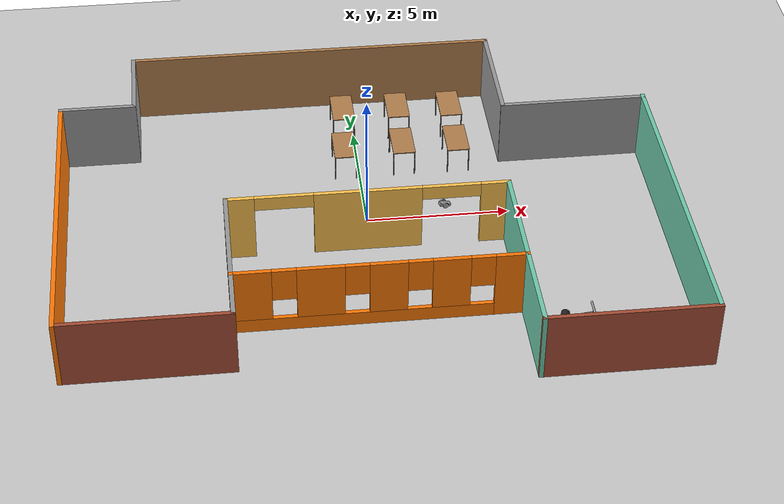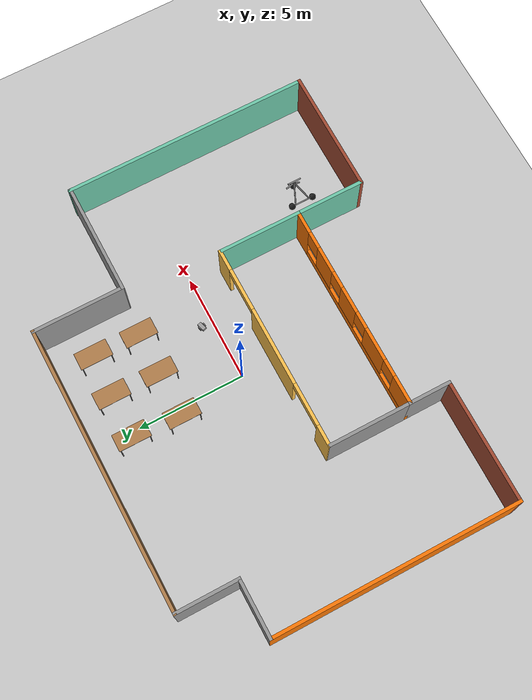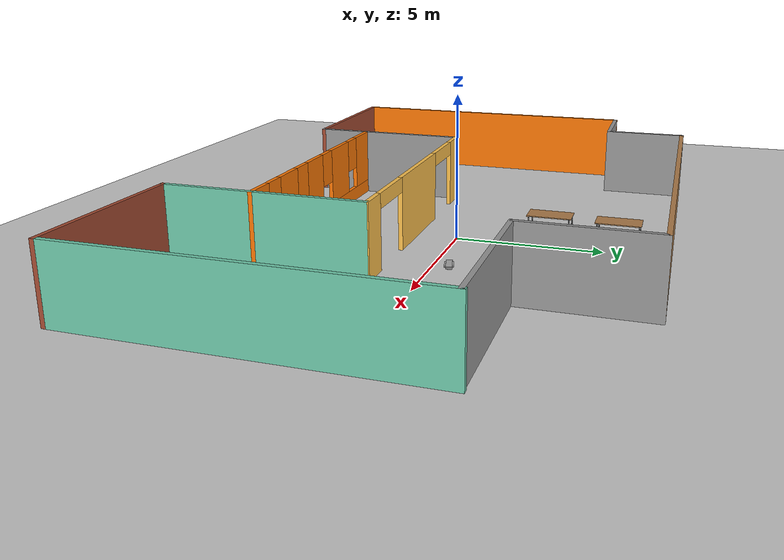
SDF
<sdf version="1.6">
 <world name="default">
  <model name="ground_plane">
   <static>1</static>
   <link name="link">
    <collision name="collision">
     <geometry><plane><normal>0 0 1</normal><size>100 100</size></plane></geometry>
     <surface>
      <contact><collide_bitmask>65535</collide_bitmask></contact>
      <friction><ode><mu>100</mu><mu2>50</mu2></ode></friction>
     </surface>
    </collision>
    <visual name="visual">
     <cast_shadows>0</cast_shadows>
     <geometry><plane><normal>0 0 1</normal><size>100 100</size></plane></geometry>
     <material>
      <script><uri>file://media/materials/scripts/gazebo.material</uri><name>Gazebo/Grey</name></script>
     </material>
    </visual>
   </link>
  </model>
  <model name="Building">
   <pose>-0.12037 -0.61393 0 0 -0 0</pose>
   <link name="Wall_0">
    <collision name="Wall_0_Collision">
     <geometry><box><size>13.25 0.15 2.5</size></box></geometry>
     <pose>0 0 1.25 0 -0 0</pose>
    </collision>
    <visual name="Wall_0_Visual">
     <pose>0 0 1.25 0 -0 0</pose>
     <geometry><box><size>13.25 0.15 2.5</size></box></geometry>
     <material>
      <script><uri>file://media/materials/scripts/gazebo.material</uri><name>Gazebo/Wood</name></script>
      <ambient>1 1 1 1</ambient>
     </material>
     <meta><layer>0</layer></meta>
    </visual>
    <pose>-1.25 7.725 0 0 -0 0</pose>
   </link>
   <link name="Wall_1">
    <collision name="Wall_1_Collision">
     <geometry><box><size>4.27249 0.15 2.5</size></box></geometry>
     <pose>0 0 1.25 0 -0 0</pose>
    </collision>
    <visual name="Wall_1_Visual">
     <pose>0 0 1.25 0 -0 0</pose>
     <geometry><box><size>4.27249 0.15 2.5</size></box></geometry>
     <material>
      <script><uri>file://media/materials/scripts/gazebo.material</uri><name>Gazebo/Grey</name></script>
      <ambient>1 1 1 1</ambient>
     </material>
     <meta><layer>0</layer></meta>
    </visual>
    <pose>5.3 5.66375 0 0 -0 -1.5708</pose>
   </link>
   <link name="Wall_10">
    <collision name="Wall_10_Collision">
     <geometry><box><size>2.75 0.15 2.5</size></box></geometry>
     <pose>0 0 1.25 0 -0 0</pose>
    </collision>
    <visual name="Wall_10_Visual">
     <pose>0 0 1.25 0 -0 0</pose>
     <geometry><box><size>2.75 0.15 2.5</size></box></geometry>
     <material>
      <script><uri>file://media/materials/scripts/gazebo.material</uri><name>Gazebo/Grey</name></script>
      <ambient>1 1 1 1</ambient>
     </material>
     <meta><layer>0</layer></meta>
    </visual>
    <pose>-9.1 4.875 0 0 -0 0</pose>
   </link>
   <link name="Wall_11">
    <collision name="Wall_11_Collision">
     <geometry><box><size>3 0.15 2.5</size></box></geometry>
     <pose>0 0 1.25 0 -0 0</pose>
    </collision>
    <visual name="Wall_11_Visual">
     <pose>0 0 1.25 0 -0 0</pose>
     <geometry><box><size>3 0.15 2.5</size></box></geometry>
     <material>
      <script><uri>file://media/materials/scripts/gazebo.material</uri><name>Gazebo/Grey</name></script>
      <ambient>1 1 1 1</ambient>
     </material>
     <meta><layer>0</layer></meta>
    </visual>
    <pose>-7.8 6.3 0 0 -0 1.5708</pose>
   </link>
   <link name="Wall_15">
    <collision name="Wall_15_Collision">
     <geometry><box><size>3.89729 0.15 2.5</size></box></geometry>
     <pose>0 0 1.25 0 -0 0</pose>
    </collision>
    <visual name="Wall_15_Visual">
     <pose>0 0 1.25 0 -0 0</pose>
     <geometry><box><size>3.89729 0.15 2.5</size></box></geometry>
     <material>
      <script><uri>file://media/materials/scripts/gazebo.material</uri><name>Gazebo/Grey</name></script>
      <ambient>1 1 1 1</ambient>
     </material>
     <meta><layer>0</layer></meta>
    </visual>
    <pose>-4.8 -2.75136 0 0 -0 1.5708</pose>
   </link>
   <link name="Wall_16">
    <pose>0 -0.837255 0 0 -0 0</pose>
    <visual name="Wall_16_Visual_0">
     <pose>-4.35572 0 1.25 0 -0 0</pose>
     <geometry><box><size>1.03855 0.15 2.5</size></box></geometry>
     <material>
      <script><uri>file://media/materials/scripts/gazebo.material</uri><name>Gazebo/Grey</name></script>
      <ambient>1 0.764706 0.305882 1</ambient>
     </material>
     <meta><layer>0</layer></meta>
    </visual>
    <collision name="Wall_16_Collision_0">
     <geometry><box><size>1.03855 0.15 2.5</size></box></geometry>
     <pose>-4.35572 0 1.25 0 -0 0</pose>
    </collision>
    <visual name="Wall_16_Visual_1">
     <pose>0.006927 0 1.25 0 -0 0</pose>
     <geometry><box><size>3.68675 0.15 2.5</size></box></geometry>
     <material>
      <script><uri>file://media/materials/scripts/gazebo.material</uri><name>Gazebo/Grey</name></script>
      <ambient>1 0.764706 0.305882 1</ambient>
     </material>
     <meta><layer>0</layer></meta>
    </visual>
    <collision name="Wall_16_Collision_1">
     <geometry><box><size>3.68675 0.15 2.5</size></box></geometry>
     <pose>0.006927 0 1.25 0 -0 0</pose>
    </collision>
    <visual name="Wall_16_Visual_2">
     <pose>4.36265 0 1.25 0 -0 0</pose>
     <geometry><box><size>1.0247 0.15 2.5</size></box></geometry>
     <material>
      <script><uri>file://media/materials/scripts/gazebo.material</uri><name>Gazebo/Grey</name></script>
      <ambient>1 0.764706 0.305882 1</ambient>
     </material>
     <meta><layer>0</layer></meta>
    </visual>
    <collision name="Wall_16_Collision_2">
     <geometry><box><size>1.0247 0.15 2.5</size></box></geometry>
     <pose>4.36265 0 1.25 0 -0 0</pose>
    </collision>
    <visual name="Wall_16_Visual_3">
     <pose>-2.83645 0 2.25 0 -0 0</pose>
     <geometry><box><size>2 0.15 0.5</size></box></geometry>
     <material>
      <script><uri>file://media/materials/scripts/gazebo.material</uri><name>Gazebo/Grey</name></script>
      <ambient>1 0.764706 0.305882 1</ambient>
     </material>
     <meta><layer>0</layer></meta>
    </visual>
    <collision name="Wall_16_Collision_3">
     <geometry><box><size>2 0.15 0.5</size></box></geometry>
     <pose>-2.83645 0 2.25 0 -0 0</pose>
    </collision>
    <visual name="Wall_16_Visual_4">
     <pose>2.8503 0 2.25 0 -0 0</pose>
     <geometry><box><size>2 0.15 0.5</size></box></geometry>
     <material>
      <script><uri>file://media/materials/scripts/gazebo.material</uri><name>Gazebo/Grey</name></script>
      <ambient>1 0.764706 0.305882 1</ambient>
     </material>
     <meta><layer>0</layer></meta>
    </visual>
    <collision name="Wall_16_Collision_4">
     <geometry><box><size>2 0.15 0.5</size></box></geometry>
     <pose>2.8503 0 2.25 0 -0 0</pose>
    </collision>
   </link>
   <link name="Wall_17">
    <collision name="Wall_17_Collision">
     <geometry><box><size>3.89729 0.15 2.5</size></box></geometry>
     <pose>0 0 1.25 0 -0 0</pose>
    </collision>
    <visual name="Wall_17_Visual">
     <pose>0 0 1.25 0 -0 0</pose>
     <geometry><box><size>3.89729 0.15 2.5</size></box></geometry>
     <material>
      <script><uri>file://media/materials/scripts/gazebo.material</uri><name>Gazebo/Grey</name></script>
      <ambient>0.435294 0.796078 0.67451 1</ambient>
     </material>
     <meta><layer>0</layer></meta>
    </visual>
    <pose>4.8 -2.75136 0 0 -0 -1.5708</pose>
   </link>
   <link name="Wall_2">
    <collision name="Wall_2_Collision">
     <geometry><box><size>5.25 0.15 2.5</size></box></geometry>
     <pose>0 0 1.25 0 -0 0</pose>
    </collision>
    <visual name="Wall_2_Visual">
     <pose>0 0 1.25 0 -0 0</pose>
     <geometry><box><size>5.25 0.15 2.5</size></box></geometry>
     <material>
      <script><uri>file://media/materials/scripts/gazebo.material</uri><name>Gazebo/Grey</name></script>
      <ambient>1 1 1 1</ambient>
     </material>
     <meta><layer>0</layer></meta>
    </visual>
    <pose>7.85 3.56733 0 0 -0 0</pose>
   </link>
   <link name="Wall_3">
    <collision name="Wall_3_Collision">
     <geometry><box><size>11.4775 0.15 2.5</size></box></geometry>
     <pose>0 0 1.25 0 -0 0</pose>
    </collision>
    <visual name="Wall_3_Visual">
     <pose>0 0 1.25 0 -0 0</pose>
     <geometry><box><size>11.4775 0.15 2.5</size></box></geometry>
     <material>
      <script><uri>file://media/materials/scripts/gazebo.material</uri><name>Gazebo/Grey</name></script>
      <ambient>0.435294 0.796078 0.67451 1</ambient>
     </material>
     <meta><layer>0</layer></meta>
    </visual>
    <pose>10.4 -2.06125 0 0 -0 -1.5708</pose>
   </link>
   <link name="Wall_4">
    <collision name="Wall_4_Collision">
     <geometry><box><size>5.75 0.15 2.5</size></box></geometry>
     <pose>0 0 1.25 0 -0 0</pose>
    </collision>
    <visual name="Wall_4_Visual">
     <pose>0 0 1.25 0 -0 0</pose>
     <geometry><box><size>5.75 0.15 2.5</size></box></geometry>
     <material>
      <script><uri>file://media/materials/scripts/gazebo.material</uri><name>Gazebo/Bricks</name></script>
      <ambient>1 1 1 1</ambient>
     </material>
     <meta><layer>0</layer></meta>
    </visual>
    <pose>7.6 -7.725 0 0 -0 3.14159</pose>
   </link>
   <link name="Wall_5">
    <collision name="Wall_5_Collision">
     <geometry><box><size>3.25 0.15 2.5</size></box></geometry>
     <pose>0 0 1.25 0 -0 0</pose>
    </collision>
    <visual name="Wall_5_Visual">
     <pose>0 0 1.25 0 -0 0</pose>
     <geometry><box><size>3.25 0.15 2.5</size></box></geometry>
     <material>
      <script><uri>file://media/materials/scripts/gazebo.material</uri><name>Gazebo/Grey</name></script>
      <ambient>0.435294 0.796078 0.67451 1</ambient>
     </material>
     <meta><layer>0</layer></meta>
    </visual>
    <pose>4.8 -6.175 0 0 -0 1.5708</pose>
   </link>
   <link name="Wall_6">
    <pose>0 -4.625 0 0 -0 3.14159</pose>
    <visual name="Wall_6_Visual_0">
     <pose>-4.31909 0 1.25 0 -0 0</pose>
     <geometry><box><size>1.11182 0.15 2.5</size></box></geometry>
     <material>
      <script><uri>file://media/materials/scripts/gazebo.material</uri><name>Gazebo/Grey</name></script>
      <ambient>0.996078 0.47451 0.0196078 1</ambient>
     </material>
     <meta><layer>0</layer></meta>
    </visual>
    <collision name="Wall_6_Collision_0">
     <geometry><box><size>1.11182 0.15 2.5</size></box></geometry>
     <pose>-4.31909 0 1.25 0 -0 0</pose>
    </collision>
    <visual name="Wall_6_Visual_1">
     <pose>0.555911 0 0.25 0 -0 0</pose>
     <geometry><box><size>8.63818 0.15 0.5</size></box></geometry>
     <material>
      <script><uri>file://media/materials/scripts/gazebo.material</uri><name>Gazebo/Grey</name></script>
      <ambient>0.996078 0.47451 0.0196078 1</ambient>
     </material>
     <meta><layer>0</layer></meta>
    </visual>
    <collision name="Wall_6_Collision_1">
     <geometry><box><size>8.63818 0.15 0.5</size></box></geometry>
     <pose>0.555911 0 0.25 0 -0 0</pose>
    </collision>
    <visual name="Wall_6_Visual_2">
     <pose>-2.33907 0 1.5 0 -0 0</pose>
     <geometry><box><size>1.24822 0.15 2</size></box></geometry>
     <material>
      <script><uri>file://media/materials/scripts/gazebo.material</uri><name>Gazebo/Grey</name></script>
      <ambient>0.996078 0.47451 0.0196078 1</ambient>
     </material>
     <meta><layer>0</layer></meta>
    </visual>
    <collision name="Wall_6_Collision_2">
     <geometry><box><size>1.24822 0.15 2</size></box></geometry>
     <pose>-2.33907 0 1.5 0 -0 0</pose>
    </collision>
    <visual name="Wall_6_Visual_3">
     <pose>-0.290856 0 1.5 0 -0 0</pose>
     <geometry><box><size>1.24822 0.15 2</size></box></geometry>
     <material>
      <script><uri>file://media/materials/scripts/gazebo.material</uri><name>Gazebo/Grey</name></script>
      <ambient>0.996078 0.47451 0.0196078 1</ambient>
     </material>
     <meta><layer>0</layer></meta>
    </visual>
    <collision name="Wall_6_Collision_3">
     <geometry><box><size>1.24822 0.15 2</size></box></geometry>
     <pose>-0.290856 0 1.5 0 -0 0</pose>
    </collision>
    <visual name="Wall_6_Visual_4">
     <pose>1.91696 0 1.5 0 -0 0</pose>
     <geometry><box><size>1.56742 0.15 2</size></box></geometry>
     <material>
      <script><uri>file://media/materials/scripts/gazebo.material</uri><name>Gazebo/Grey</name></script>
      <ambient>0.996078 0.47451 0.0196078 1</ambient>
     </material>
     <meta><layer>0</layer></meta>
    </visual>
    <collision name="Wall_6_Collision_4">
     <geometry><box><size>1.56742 0.15 2</size></box></geometry>
     <pose>1.91696 0 1.5 0 -0 0</pose>
    </collision>
    <visual name="Wall_6_Visual_5">
     <pose>4.18783 0 1.5 0 -0 0</pose>
     <geometry><box><size>1.37433 0.15 2</size></box></geometry>
     <material>
      <script><uri>file://media/materials/scripts/gazebo.material</uri><name>Gazebo/Grey</name></script>
      <ambient>0.996078 0.47451 0.0196078 1</ambient>
     </material>
     <meta><layer>0</layer></meta>
    </visual>
    <collision name="Wall_6_Collision_5">
     <geometry><box><size>1.37433 0.15 2</size></box></geometry>
     <pose>4.18783 0 1.5 0 -0 0</pose>
    </collision>
    <visual name="Wall_6_Visual_6">
     <pose>-3.36318 0 1.9 0 -0 0</pose>
     <geometry><box><size>0.8 0.15 1.2</size></box></geometry>
     <material>
      <script><uri>file://media/materials/scripts/gazebo.material</uri><name>Gazebo/Grey</name></script>
      <ambient>0.996078 0.47451 0.0196078 1</ambient>
     </material>
     <meta><layer>0</layer></meta>
    </visual>
    <collision name="Wall_6_Collision_6">
     <geometry><box><size>0.8 0.15 1.2</size></box></geometry>
     <pose>-3.36318 0 1.9 0 -0 0</pose>
    </collision>
    <visual name="Wall_6_Visual_7">
     <pose>-1.31496 0 1.9 0 -0 0</pose>
     <geometry><box><size>0.8 0.15 1.2</size></box></geometry>
     <material>
      <script><uri>file://media/materials/scripts/gazebo.material</uri><name>Gazebo/Grey</name></script>
      <ambient>0.996078 0.47451 0.0196078 1</ambient>
     </material>
     <meta><layer>0</layer></meta>
    </visual>
    <collision name="Wall_6_Collision_7">
     <geometry><box><size>0.8 0.15 1.2</size></box></geometry>
     <pose>-1.31496 0 1.9 0 -0 0</pose>
    </collision>
    <visual name="Wall_6_Visual_8">
     <pose>0.733252 0 1.9 0 -0 0</pose>
     <geometry><box><size>0.8 0.15 1.2</size></box></geometry>
     <material>
      <script><uri>file://media/materials/scripts/gazebo.material</uri><name>Gazebo/Grey</name></script>
      <ambient>0.996078 0.47451 0.0196078 1</ambient>
     </material>
     <meta><layer>0</layer></meta>
    </visual>
    <collision name="Wall_6_Collision_8">
     <geometry><box><size>0.8 0.15 1.2</size></box></geometry>
     <pose>0.733252 0 1.9 0 -0 0</pose>
    </collision>
    <visual name="Wall_6_Visual_9">
     <pose>3.10067 0 1.9 0 -0 0</pose>
     <geometry><box><size>0.8 0.15 1.2</size></box></geometry>
     <material>
      <script><uri>file://media/materials/scripts/gazebo.material</uri><name>Gazebo/Grey</name></script>
      <ambient>0.996078 0.47451 0.0196078 1</ambient>
     </material>
     <meta><layer>0</layer></meta>
    </visual>
    <collision name="Wall_6_Collision_9">
     <geometry><box><size>0.8 0.15 1.2</size></box></geometry>
     <pose>3.10067 0 1.9 0 -0 0</pose>
    </collision>
   </link>
   <link name="Wall_7">
    <collision name="Wall_7_Collision">
     <geometry><box><size>2 0.15 2.5</size></box></geometry>
     <pose>0 0 1.25 0 -0 0</pose>
    </collision>
    <visual name="Wall_7_Visual">
     <pose>0 0 1.25 0 -0 0</pose>
     <geometry><box><size>2 0.15 2.5</size></box></geometry>
     <material>
      <script><uri>file://media/materials/scripts/gazebo.material</uri><name>Gazebo/Grey</name></script>
      <ambient>1 1 1 1</ambient>
     </material>
     <meta><layer>0</layer></meta>
    </visual>
    <pose>-4.8 -5.55 0 0 -0 -1.5708</pose>
   </link>
   <link name="Wall_8">
    <collision name="Wall_8_Collision">
     <geometry><box><size>5.75 0.15 2.5</size></box></geometry>
     <pose>0 0 1.25 0 -0 0</pose>
    </collision>
    <visual name="Wall_8_Visual">
     <pose>0 0 1.25 0 -0 0</pose>
     <geometry><box><size>5.75 0.15 2.5</size></box></geometry>
     <material>
      <script><uri>file://media/materials/scripts/gazebo.material</uri><name>Gazebo/Bricks</name></script>
      <ambient>1 1 1 1</ambient>
     </material>
     <meta><layer>0</layer></meta>
    </visual>
    <pose>-7.6 -6.475 0 0 -0 3.14159</pose>
   </link>
   <link name="Wall_9">
    <collision name="Wall_9_Collision">
     <geometry><box><size>11.5 0.15 2.5</size></box></geometry>
     <pose>0 0 1.25 0 -0 0</pose>
    </collision>
    <visual name="Wall_9_Visual">
     <pose>0 0 1.25 0 -0 0</pose>
     <geometry><box><size>11.5 0.15 2.5</size></box></geometry>
     <material>
      <script><uri>file://media/materials/scripts/gazebo.material</uri><name>Gazebo/Grey</name></script>
      <ambient>0.996078 0.47451 0.0196078 1</ambient>
     </material>
     <meta><layer>0</layer></meta>
    </visual>
    <pose>-10.4 -0.8 0 0 -0 1.5708</pose>
   </link>
   <static>1</static>
  </model>
  <model name="trisphere_cycle">
   <link name="frame">
    <pose>-0.408559 0 0.385023 0 -0.522021 0</pose>
    <inertial>
     <mass>10</mass>
     <inertia><ixx>0.228</ixx><iyy>0.743521</iyy><izz>0.965521</izz><ixy>0</ixy><ixz>0</ixz><iyz>0</iyz></inertia>
    </inertial>
    <collision name="axle_collision">
     <pose>-0.471335 0 0 1.5708 -0 0</pose>
     <geometry><cylinder><length>1.03923</length><radius>0.03</radius></cylinder></geometry>
    </collision>
    <visual name="axle_visual">
     <pose>-0.471335 0 0 1.5708 -0 0</pose>
     <geometry><cylinder><length>1.03923</length><radius>0.03</radius></cylinder></geometry>
     <material>
      <script><uri>file://media/materials/scripts/gazebo.material</uri><name>Gazebo/Grey</name></script>
     </material>
    </visual>
    <collision name="frame_left_collision">
     <pose>0 0.171552 0 -2.79253 1.57079 3.14159</pose>
     <geometry><cylinder><length>1.00317</length><radius>0.03</radius></cylinder></geometry>
    </collision>
    <visual name="frame_left_visual">
     <pose>0 0.171552 0 -2.79253 1.57079 3.14159</pose>
     <geometry><cylinder><length>1.00317</length><radius>0.03</radius></cylinder></geometry>
     <material>
      <script><uri>file://media/materials/scripts/gazebo.material</uri><name>Gazebo/Grey</name></script>
     </material>
    </visual>
    <collision name="frame_right_collision">
     <pose>0 -0.171552 0 2.79253 1.57079 -3.14159</pose>
     <geometry><cylinder><length>1.00317</length><radius>0.03</radius></cylinder></geometry>
    </collision>
    <visual name="frame_right_visual">
     <pose>0 -0.171552 0 2.79253 1.57079 -3.14159</pose>
     <geometry><cylinder><length>1.00317</length><radius>0.03</radius></cylinder></geometry>
     <material>
      <script><uri>file://media/materials/scripts/gazebo.material</uri><name>Gazebo/Grey</name></script>
     </material>
    </visual>
   </link>
   <link name="fork">
    <pose>0.041441 0 0.385023 0 -0.174533 0</pose>
    <inertial>
     <mass>3</mass>
     <inertia>
      <ixx>0.158203</ixx>
      <iyy>0.0583594</iyy>
      <izz>0.102656</izz>
      <ixy>0</ixy>
      <ixz>0</ixz>
      <iyz>0</iyz>
     </inertia>
    </inertial>
    <collision name="handlebars_collision">
     <pose>0 0 0.397748 1.5708 -0 0</pose>
     <geometry><cylinder><length>0.636396</length><radius>0.0375</radius></cylinder></geometry>
    </collision>
    <visual name="handlebars_visual">
     <pose>0 0 0.397748 1.5708 -0 0</pose>
     <geometry><cylinder><length>0.636396</length><radius>0.0375</radius></cylinder></geometry>
     <material>
      <script><uri>file://media/materials/scripts/gazebo.material</uri><name>Gazebo/Grey</name></script>
     </material>
    </visual>
    <collision name="headtube_collision">
     <pose>0 0 0.238649 0 -0 0</pose>
     <geometry><cylinder><length>0.318198</length><radius>0.0375</radius></cylinder></geometry>
    </collision>
    <visual name="headtube_visual">
     <pose>0 0 0.238649 0 -0 0</pose>
     <geometry><cylinder><length>0.318198</length><radius>0.0375</radius></cylinder></geometry>
     <material>
      <script><uri>file://media/materials/scripts/gazebo.material</uri><name>Gazebo/Grey</name></script>
     </material>
    </visual>
    <collision name="spindle_collision">
     <pose>0 0 -0.238649 1.5708 -0 0</pose>
     <geometry><cylinder><length>0.636396</length><radius>0.015</radius></cylinder></geometry>
    </collision>
    <visual name="spindle_visual">
     <pose>0 0 -0.238649 1.5708 -0 0</pose>
     <geometry><cylinder><length>0.636396</length><radius>0.015</radius></cylinder></geometry>
     <material>
      <script><uri>file://media/materials/scripts/gazebo.material</uri><name>Gazebo/Grey</name></script>
     </material>
    </visual>
    <collision name="fork_left_collision">
     <pose>0 0.159099 -0.07955 0.785398 -0 0</pose>
     <geometry><cylinder><length>0.45</length><radius>0.0375</radius></cylinder></geometry>
    </collision>
    <visual name="fork_left_visual">
     <pose>0 0.159099 -0.07955 0.785398 -0 0</pose>
     <geometry><cylinder><length>0.45</length><radius>0.0375</radius></cylinder></geometry>
     <material>
      <script><uri>file://media/materials/scripts/gazebo.material</uri><name>Gazebo/Grey</name></script>
     </material>
    </visual>
    <collision name="fork_right_collision">
     <pose>0 -0.159099 -0.07955 -0.785398 0 0</pose>
     <geometry><cylinder><length>0.45</length><radius>0.0375</radius></cylinder></geometry>
    </collision>
    <visual name="fork_right_visual">
     <pose>0 -0.159099 -0.07955 -0.785398 0 0</pose>
     <geometry><cylinder><length>0.45</length><radius>0.0375</radius></cylinder></geometry>
     <material>
      <script><uri>file://media/materials/scripts/gazebo.material</uri><name>Gazebo/Grey</name></script>
     </material>
    </visual>
   </link>
   <link name="wheel_front">
    <pose>0.082882 0 0.15 0 -0 0</pose>
    <inertial>
     <mass>0.5</mass>
     <inertia><ixx>0.0045</ixx><iyy>0.0045</iyy><izz>0.0045</izz><ixy>0</ixy><ixz>0</ixz><iyz>0</iyz></inertia>
    </inertial>
    <collision name="collision">
     <geometry><sphere><radius>0.15</radius></sphere></geometry>
     <surface><contact><ode><kp>1e+08</kp><kd>1</kd><min_depth>0.0005</min_depth></ode></contact></surface>
    </collision>
    <visual name="visual">
     <geometry><sphere><radius>0.15</radius></sphere></geometry>
     <material>
      <script><uri>file://media/materials/scripts/gazebo.material</uri><name>Gazebo/Black</name></script>
     </material>
    </visual>
   </link>
   <joint name="wheel_front_steer" type="revolute">
    <parent>frame</parent>
    <child>fork</child>
    <axis>
     <xyz>0 0 1</xyz>
     <limit><lower>-0.959931</lower><upper>0.959931</upper></limit>
     <use_parent_model_frame>0</use_parent_model_frame>
     <dynamics><spring_reference>0</spring_reference><spring_stiffness>0</spring_stiffness></dynamics>
    </axis>
   </joint>
   <joint name="wheel_front_spin" type="revolute">
    <parent>fork</parent>
    <child>wheel_front</child>
    <axis>
     <xyz>0 1 0</xyz>
     <use_parent_model_frame>0</use_parent_model_frame>
     <limit><lower>-1e+16</lower><upper>1e+16</upper></limit>
     <dynamics><spring_reference>0</spring_reference><spring_stiffness>0</spring_stiffness></dynamics>
    </axis>
   </joint>
   <link name="wheel_rear_left">
    <pose>-0.817118 0.519615 0.15 0 -0 0</pose>
    <inertial>
     <mass>0.5</mass>
     <inertia><ixx>0.0045</ixx><iyy>0.0045</iyy><izz>0.0045</izz><ixy>0</ixy><ixz>0</ixz><iyz>0</iyz></inertia>
    </inertial>
    <collision name="collision">
     <geometry><sphere><radius>0.15</radius></sphere></geometry>
     <surface><contact><ode><kp>1e+08</kp><kd>1</kd><min_depth>0.0005</min_depth></ode></contact></surface>
    </collision>
    <visual name="visual">
     <geometry><sphere><radius>0.15</radius></sphere></geometry>
     <material>
      <script><uri>file://media/materials/scripts/gazebo.material</uri><name>Gazebo/Black</name></script>
     </material>
    </visual>
   </link>
   <joint name="wheel_rear_left_spin" type="revolute">
    <parent>frame</parent>
    <child>wheel_rear_left</child>
    <axis>
     <xyz>0 1 0</xyz>
     <use_parent_model_frame>0</use_parent_model_frame>
     <limit><lower>-1e+16</lower><upper>1e+16</upper></limit>
     <dynamics><spring_reference>0</spring_reference><spring_stiffness>0</spring_stiffness></dynamics>
    </axis>
   </joint>
   <link name="wheel_rear_right">
    <pose>-0.817118 -0.519615 0.15 0 -0 0</pose>
    <inertial>
     <mass>0.5</mass>
     <inertia><ixx>0.0045</ixx><iyy>0.0045</iyy><izz>0.0045</izz><ixy>0</ixy><ixz>0</ixz><iyz>0</iyz></inertia>
    </inertial>
    <collision name="collision">
     <geometry><sphere><radius>0.15</radius></sphere></geometry>
     <surface><contact><ode><kp>1e+08</kp><kd>1</kd><min_depth>0.0005</min_depth></ode></contact></surface>
    </collision>
    <visual name="visual">
     <geometry><sphere><radius>0.15</radius></sphere></geometry>
     <material>
      <script><uri>file://media/materials/scripts/gazebo.material</uri><name>Gazebo/Black</name></script>
     </material>
    </visual>
   </link>
   <joint name="wheel_rear_right_spin" type="revolute">
    <parent>frame</parent>
    <child>wheel_rear_right</child>
    <axis>
     <xyz>0 1 0</xyz>
     <use_parent_model_frame>0</use_parent_model_frame>
     <limit><lower>-1e+16</lower><upper>1e+16</upper></limit>
     <dynamics><spring_reference>0</spring_reference><spring_stiffness>0</spring_stiffness></dynamics>
    </axis>
   </joint>
   <pose>6.79048 -6.20647 -0.000501 -0 1e-06 -0.000787</pose>
  </model>
  <model name="table_clone_1">
   <static>1</static>
   <link name="link">
    <collision name="surface">
     <pose>0 0 1 0 -0 0</pose>
     <geometry><box><size>1.5 0.8 0.03</size></box></geometry>
     <surface><friction><ode><mu>0.6</mu><mu2>0.6</mu2></ode></friction></surface>
    </collision>
    <visual name="visual1">
     <pose>0 0 1 0 -0 0</pose>
     <geometry><box><size>1.5 0.8 0.03</size></box></geometry>
     <material>
      <script><uri>file://media/materials/scripts/gazebo.material</uri><name>Gazebo/Wood</name></script>
     </material>
    </visual>
    <collision name="front_left_leg">
     <pose>0.68 0.38 0.5 0 -0 0</pose>
     <geometry><cylinder><radius>0.02</radius><length>1</length></cylinder></geometry>
    </collision>
    <visual name="front_left_leg">
     <pose>0.68 0.38 0.5 0 -0 0</pose>
     <geometry><cylinder><radius>0.02</radius><length>1</length></cylinder></geometry>
     <material>
      <script><uri>file://media/materials/scripts/gazebo.material</uri><name>Gazebo/Grey</name></script>
     </material>
    </visual>
    <collision name="front_right_leg">
     <pose>0.68 -0.38 0.5 0 -0 0</pose>
     <geometry><cylinder><radius>0.02</radius><length>1</length></cylinder></geometry>
    </collision>
    <visual name="front_right_leg">
     <pose>0.68 -0.38 0.5 0 -0 0</pose>
     <geometry><cylinder><radius>0.02</radius><length>1</length></cylinder></geometry>
     <material>
      <script><uri>file://media/materials/scripts/gazebo.material</uri><name>Gazebo/Grey</name></script>
     </material>
    </visual>
    <collision name="back_right_leg">
     <pose>-0.68 -0.38 0.5 0 -0 0</pose>
     <geometry><cylinder><radius>0.02</radius><length>1</length></cylinder></geometry>
    </collision>
    <visual name="back_right_leg">
     <pose>-0.68 -0.38 0.5 0 -0 0</pose>
     <geometry><cylinder><radius>0.02</radius><length>1</length></cylinder></geometry>
     <material>
      <script><uri>file://media/materials/scripts/gazebo.material</uri><name>Gazebo/Grey</name></script>
     </material>
    </visual>
    <collision name="back_left_leg">
     <pose>-0.68 0.38 0.5 0 -0 0</pose>
     <geometry><cylinder><radius>0.02</radius><length>1</length></cylinder></geometry>
    </collision>
    <visual name="back_left_leg">
     <pose>-0.68 0.38 0.5 0 -0 0</pose>
     <geometry><cylinder><radius>0.02</radius><length>1</length></cylinder></geometry>
     <material>
      <script><uri>file://media/materials/scripts/gazebo.material</uri><name>Gazebo/Grey</name></script>
     </material>
    </visual>
   </link>
   <pose>-0.362196 5.42426 0 0 -0 1.5708</pose>
  </model>
  <model name="table_clone_2">
   <static>1</static>
   <link name="link">
    <collision name="surface">
     <pose>0 0 1 0 -0 0</pose>
     <geometry><box><size>1.5 0.8 0.03</size></box></geometry>
     <surface><friction><ode><mu>0.6</mu><mu2>0.6</mu2></ode></friction></surface>
    </collision>
    <visual name="visual1">
     <pose>0 0 1 0 -0 0</pose>
     <geometry><box><size>1.5 0.8 0.03</size></box></geometry>
     <material>
      <script><uri>file://media/materials/scripts/gazebo.material</uri><name>Gazebo/Wood</name></script>
     </material>
    </visual>
    <collision name="front_left_leg">
     <pose>0.68 0.38 0.5 0 -0 0</pose>
     <geometry><cylinder><radius>0.02</radius><length>1</length></cylinder></geometry>
    </collision>
    <visual name="front_left_leg">
     <pose>0.68 0.38 0.5 0 -0 0</pose>
     <geometry><cylinder><radius>0.02</radius><length>1</length></cylinder></geometry>
     <material>
      <script><uri>file://media/materials/scripts/gazebo.material</uri><name>Gazebo/Grey</name></script>
     </material>
    </visual>
    <collision name="front_right_leg">
     <pose>0.68 -0.38 0.5 0 -0 0</pose>
     <geometry><cylinder><radius>0.02</radius><length>1</length></cylinder></geometry>
    </collision>
    <visual name="front_right_leg">
     <pose>0.68 -0.38 0.5 0 -0 0</pose>
     <geometry><cylinder><radius>0.02</radius><length>1</length></cylinder></geometry>
     <material>
      <script><uri>file://media/materials/scripts/gazebo.material</uri><name>Gazebo/Grey</name></script>
     </material>
    </visual>
    <collision name="back_right_leg">
     <pose>-0.68 -0.38 0.5 0 -0 0</pose>
     <geometry><cylinder><radius>0.02</radius><length>1</length></cylinder></geometry>
    </collision>
    <visual name="back_right_leg">
     <pose>-0.68 -0.38 0.5 0 -0 0</pose>
     <geometry><cylinder><radius>0.02</radius><length>1</length></cylinder></geometry>
     <material>
      <script><uri>file://media/materials/scripts/gazebo.material</uri><name>Gazebo/Grey</name></script>
     </material>
    </visual>
    <collision name="back_left_leg">
     <pose>-0.68 0.38 0.5 0 -0 0</pose>
     <geometry><cylinder><radius>0.02</radius><length>1</length></cylinder></geometry>
    </collision>
    <visual name="back_left_leg">
     <pose>-0.68 0.38 0.5 0 -0 0</pose>
     <geometry><cylinder><radius>0.02</radius><length>1</length></cylinder></geometry>
     <material>
      <script><uri>file://media/materials/scripts/gazebo.material</uri><name>Gazebo/Grey</name></script>
     </material>
    </visual>
   </link>
   <pose>1.6624 5.38113 0 0 -0 1.5708</pose>
  </model>
  <model name="table_clone_3">
   <static>1</static>
   <link name="link">
    <collision name="surface">
     <pose>0 0 1 0 -0 0</pose>
     <geometry><box><size>1.5 0.8 0.03</size></box></geometry>
     <surface><friction><ode><mu>0.6</mu><mu2>0.6</mu2></ode></friction></surface>
    </collision>
    <visual name="visual1">
     <pose>0 0 1 0 -0 0</pose>
     <geometry><box><size>1.5 0.8 0.03</size></box></geometry>
     <material>
      <script><uri>file://media/materials/scripts/gazebo.material</uri><name>Gazebo/Wood</name></script>
     </material>
    </visual>
    <collision name="front_left_leg">
     <pose>0.68 0.38 0.5 0 -0 0</pose>
     <geometry><cylinder><radius>0.02</radius><length>1</length></cylinder></geometry>
    </collision>
    <visual name="front_left_leg">
     <pose>0.68 0.38 0.5 0 -0 0</pose>
     <geometry><cylinder><radius>0.02</radius><length>1</length></cylinder></geometry>
     <material>
      <script><uri>file://media/materials/scripts/gazebo.material</uri><name>Gazebo/Grey</name></script>
     </material>
    </visual>
    <collision name="front_right_leg">
     <pose>0.68 -0.38 0.5 0 -0 0</pose>
     <geometry><cylinder><radius>0.02</radius><length>1</length></cylinder></geometry>
    </collision>
    <visual name="front_right_leg">
     <pose>0.68 -0.38 0.5 0 -0 0</pose>
     <geometry><cylinder><radius>0.02</radius><length>1</length></cylinder></geometry>
     <material>
      <script><uri>file://media/materials/scripts/gazebo.material</uri><name>Gazebo/Grey</name></script>
     </material>
    </visual>
    <collision name="back_right_leg">
     <pose>-0.68 -0.38 0.5 0 -0 0</pose>
     <geometry><cylinder><radius>0.02</radius><length>1</length></cylinder></geometry>
    </collision>
    <visual name="back_right_leg">
     <pose>-0.68 -0.38 0.5 0 -0 0</pose>
     <geometry><cylinder><radius>0.02</radius><length>1</length></cylinder></geometry>
     <material>
      <script><uri>file://media/materials/scripts/gazebo.material</uri><name>Gazebo/Grey</name></script>
     </material>
    </visual>
    <collision name="back_left_leg">
     <pose>-0.68 0.38 0.5 0 -0 0</pose>
     <geometry><cylinder><radius>0.02</radius><length>1</length></cylinder></geometry>
    </collision>
    <visual name="back_left_leg">
     <pose>-0.68 0.38 0.5 0 -0 0</pose>
     <geometry><cylinder><radius>0.02</radius><length>1</length></cylinder></geometry>
     <material>
      <script><uri>file://media/materials/scripts/gazebo.material</uri><name>Gazebo/Grey</name></script>
     </material>
    </visual>
   </link>
   <pose>3.59959 5.29445 0 0 -0 1.5708</pose>
  </model>
  <model name="table_clone_4">
   <static>1</static>
   <link name="link">
    <collision name="surface">
     <pose>0 0 1 0 -0 0</pose>
     <geometry><box><size>1.5 0.8 0.03</size></box></geometry>
     <surface><friction><ode><mu>0.6</mu><mu2>0.6</mu2></ode></friction></surface>
    </collision>
    <visual name="visual1">
     <pose>0 0 1 0 -0 0</pose>
     <geometry><box><size>1.5 0.8 0.03</size></box></geometry>
     <material>
      <script><uri>file://media/materials/scripts/gazebo.material</uri><name>Gazebo/Wood</name></script>
     </material>
    </visual>
    <collision name="front_left_leg">
     <pose>0.68 0.38 0.5 0 -0 0</pose>
     <geometry><cylinder><radius>0.02</radius><length>1</length></cylinder></geometry>
    </collision>
    <visual name="front_left_leg">
     <pose>0.68 0.38 0.5 0 -0 0</pose>
     <geometry><cylinder><radius>0.02</radius><length>1</length></cylinder></geometry>
     <material>
      <script><uri>file://media/materials/scripts/gazebo.material</uri><name>Gazebo/Grey</name></script>
     </material>
    </visual>
    <collision name="front_right_leg">
     <pose>0.68 -0.38 0.5 0 -0 0</pose>
     <geometry><cylinder><radius>0.02</radius><length>1</length></cylinder></geometry>
    </collision>
    <visual name="front_right_leg">
     <pose>0.68 -0.38 0.5 0 -0 0</pose>
     <geometry><cylinder><radius>0.02</radius><length>1</length></cylinder></geometry>
     <material>
      <script><uri>file://media/materials/scripts/gazebo.material</uri><name>Gazebo/Grey</name></script>
     </material>
    </visual>
    <collision name="back_right_leg">
     <pose>-0.68 -0.38 0.5 0 -0 0</pose>
     <geometry><cylinder><radius>0.02</radius><length>1</length></cylinder></geometry>
    </collision>
    <visual name="back_right_leg">
     <pose>-0.68 -0.38 0.5 0 -0 0</pose>
     <geometry><cylinder><radius>0.02</radius><length>1</length></cylinder></geometry>
     <material>
      <script><uri>file://media/materials/scripts/gazebo.material</uri><name>Gazebo/Grey</name></script>
     </material>
    </visual>
    <collision name="back_left_leg">
     <pose>-0.68 0.38 0.5 0 -0 0</pose>
     <geometry><cylinder><radius>0.02</radius><length>1</length></cylinder></geometry>
    </collision>
    <visual name="back_left_leg">
     <pose>-0.68 0.38 0.5 0 -0 0</pose>
     <geometry><cylinder><radius>0.02</radius><length>1</length></cylinder></geometry>
     <material>
      <script><uri>file://media/materials/scripts/gazebo.material</uri><name>Gazebo/Grey</name></script>
     </material>
    </visual>
   </link>
   <pose>3.5646 3.15771 0 0 -0 1.5708</pose>
  </model>
  <model name="table_clone_5">
   <static>1</static>
   <link name="link">
    <collision name="surface">
     <pose>0 0 1 0 -0 0</pose>
     <geometry><box><size>1.5 0.8 0.03</size></box></geometry>
     <surface><friction><ode><mu>0.6</mu><mu2>0.6</mu2></ode></friction></surface>
    </collision>
    <visual name="visual1">
     <pose>0 0 1 0 -0 0</pose>
     <geometry><box><size>1.5 0.8 0.03</size></box></geometry>
     <material>
      <script><uri>file://media/materials/scripts/gazebo.material</uri><name>Gazebo/Wood</name></script>
     </material>
    </visual>
    <collision name="front_left_leg">
     <pose>0.68 0.38 0.5 0 -0 0</pose>
     <geometry><cylinder><radius>0.02</radius><length>1</length></cylinder></geometry>
    </collision>
    <visual name="front_left_leg">
     <pose>0.68 0.38 0.5 0 -0 0</pose>
     <geometry><cylinder><radius>0.02</radius><length>1</length></cylinder></geometry>
     <material>
      <script><uri>file://media/materials/scripts/gazebo.material</uri><name>Gazebo/Grey</name></script>
     </material>
    </visual>
    <collision name="front_right_leg">
     <pose>0.68 -0.38 0.5 0 -0 0</pose>
     <geometry><cylinder><radius>0.02</radius><length>1</length></cylinder></geometry>
    </collision>
    <visual name="front_right_leg">
     <pose>0.68 -0.38 0.5 0 -0 0</pose>
     <geometry><cylinder><radius>0.02</radius><length>1</length></cylinder></geometry>
     <material>
      <script><uri>file://media/materials/scripts/gazebo.material</uri><name>Gazebo/Grey</name></script>
     </material>
    </visual>
    <collision name="back_right_leg">
     <pose>-0.68 -0.38 0.5 0 -0 0</pose>
     <geometry><cylinder><radius>0.02</radius><length>1</length></cylinder></geometry>
    </collision>
    <visual name="back_right_leg">
     <pose>-0.68 -0.38 0.5 0 -0 0</pose>
     <geometry><cylinder><radius>0.02</radius><length>1</length></cylinder></geometry>
     <material>
      <script><uri>file://media/materials/scripts/gazebo.material</uri><name>Gazebo/Grey</name></script>
     </material>
    </visual>
    <collision name="back_left_leg">
     <pose>-0.68 0.38 0.5 0 -0 0</pose>
     <geometry><cylinder><radius>0.02</radius><length>1</length></cylinder></geometry>
    </collision>
    <visual name="back_left_leg">
     <pose>-0.68 0.38 0.5 0 -0 0</pose>
     <geometry><cylinder><radius>0.02</radius><length>1</length></cylinder></geometry>
     <material>
      <script><uri>file://media/materials/scripts/gazebo.material</uri><name>Gazebo/Grey</name></script>
     </material>
    </visual>
   </link>
   <pose>1.60472 3.17671 0 0 -0 1.5708</pose>
  </model>
  <model name="table_clone_6">
   <static>1</static>
   <link name="link">
    <collision name="surface">
     <pose>0 0 1 0 -0 0</pose>
     <geometry><box><size>1.5 0.8 0.03</size></box></geometry>
     <surface><friction><ode><mu>0.6</mu><mu2>0.6</mu2></ode></friction></surface>
    </collision>
    <visual name="visual1">
     <pose>0 0 1 0 -0 0</pose>
     <geometry><box><size>1.5 0.8 0.03</size></box></geometry>
     <material>
      <script><uri>file://media/materials/scripts/gazebo.material</uri><name>Gazebo/Wood</name></script>
     </material>
    </visual>
    <collision name="front_left_leg">
     <pose>0.68 0.38 0.5 0 -0 0</pose>
     <geometry><cylinder><radius>0.02</radius><length>1</length></cylinder></geometry>
    </collision>
    <visual name="front_left_leg">
     <pose>0.68 0.38 0.5 0 -0 0</pose>
     <geometry><cylinder><radius>0.02</radius><length>1</length></cylinder></geometry>
     <material>
      <script><uri>file://media/materials/scripts/gazebo.material</uri><name>Gazebo/Grey</name></script>
     </material>
    </visual>
    <collision name="front_right_leg">
     <pose>0.68 -0.38 0.5 0 -0 0</pose>
     <geometry><cylinder><radius>0.02</radius><length>1</length></cylinder></geometry>
    </collision>
    <visual name="front_right_leg">
     <pose>0.68 -0.38 0.5 0 -0 0</pose>
     <geometry><cylinder><radius>0.02</radius><length>1</length></cylinder></geometry>
     <material>
      <script><uri>file://media/materials/scripts/gazebo.material</uri><name>Gazebo/Grey</name></script>
     </material>
    </visual>
    <collision name="back_right_leg">
     <pose>-0.68 -0.38 0.5 0 -0 0</pose>
     <geometry><cylinder><radius>0.02</radius><length>1</length></cylinder></geometry>
    </collision>
    <visual name="back_right_leg">
     <pose>-0.68 -0.38 0.5 0 -0 0</pose>
     <geometry><cylinder><radius>0.02</radius><length>1</length></cylinder></geometry>
     <material>
      <script><uri>file://media/materials/scripts/gazebo.material</uri><name>Gazebo/Grey</name></script>
     </material>
    </visual>
    <collision name="back_left_leg">
     <pose>-0.68 0.38 0.5 0 -0 0</pose>
     <geometry><cylinder><radius>0.02</radius><length>1</length></cylinder></geometry>
    </collision>
    <visual name="back_left_leg">
     <pose>-0.68 0.38 0.5 0 -0 0</pose>
     <geometry><cylinder><radius>0.02</radius><length>1</length></cylinder></geometry>
     <material>
      <script><uri>file://media/materials/scripts/gazebo.material</uri><name>Gazebo/Grey</name></script>
     </material>
    </visual>
   </link>
   <pose>-0.502067 3.13633 0 0 -0 1.5708</pose>
  </model>
  <model name="Robot2WD">
   <link name="link_0">
    <inertial>
     <mass>1</mass>
     <inertia>
      <ixx>0.166667</ixx>
      <ixy>0</ixy>
      <ixz>0</ixz>
      <iyy>0.166667</iyy>
      <iyz>0</iyz>
      <izz>0.166667</izz>
     </inertia>
    </inertial>
    <pose>0.006667 -1e-06 0 0 -0 0</pose>
    <visual name="visual">
     <geometry><box><size>0.4 0.2 0.1</size></box></geometry>
     <material>
      <lighting>1</lighting>
      <script><uri>file://media/materials/scripts/gazebo.material</uri><name>Gazebo/Grey</name></script>
      <shader type="vertex"><normal_map>__default__</normal_map></shader>
      <ambient>0.3 0.3 0.3 1</ambient>
      <diffuse>0.7 0.7 0.7 1</diffuse>
      <specular>0.01 0.01 0.01 1</specular>
      <emissive>0 0 0 1</emissive>
     </material>
    </visual>
    <collision name="collision">
     <geometry><box><size>0.4 0.2 0.1</size></box></geometry>
     <surface>
      <friction>
       <ode><mu>1</mu><mu2>1</mu2><fdir1>0 0 0</fdir1><slip1>0</slip1><slip2>0</slip2></ode>
       <torsional>
        <coefficient>1</coefficient>
        <patch_radius>0</patch_radius>
        <surface_radius>0</surface_radius>
        <use_patch_radius>1</use_patch_radius>
        <ode><slip>0</slip></ode>
       </torsional>
      </friction>
      <bounce><restitution_coefficient>0</restitution_coefficient><threshold>1e+06</threshold></bounce>
      <contact>
       <collide_without_contact>0</collide_without_contact>
       <collide_without_contact_bitmask>1</collide_without_contact_bitmask>
       <collide_bitmask>1</collide_bitmask>
       <ode>
        <soft_cfm>0</soft_cfm>
        <soft_erp>0.2</soft_erp>
        <kp>1e+13</kp>
        <kd>1</kd>
        <max_vel>0.01</max_vel>
        <min_depth>0</min_depth>
       </ode>
       <bullet>
        <split_impulse>1</split_impulse>
        <split_impulse_penetration_threshold>-0.01</split_impulse_penetration_threshold>
        <soft_cfm>0</soft_cfm>
        <soft_erp>0.2</soft_erp>
        <kp>1e+13</kp>
        <kd>1</kd>
       </bullet>
      </contact>
     </surface>
    </collision>
   </link>
   <link name="link_1">
    <inertial>
     <mass>1</mass>
     <inertia><ixx>0.145833</ixx><ixy>0</ixy><ixz>0</ixz><iyy>0.145833</iyy><iyz>0</iyz><izz>0.125</izz></inertia>
    </inertial>
    <pose>-0.013333 0.125012 0 1.5707 -0 0</pose>
    <visual name="visual">
     <geometry><cylinder><radius>0.1</radius><length>0.05</length></cylinder></geometry>
     <material>
      <lighting>1</lighting>
      <script><uri>file://media/materials/scripts/gazebo.material</uri><name>Gazebo/Grey</name></script>
      <shader type="vertex"><normal_map>__default__</normal_map></shader>
      <ambient>0.3 0.3 0.3 1</ambient>
      <diffuse>0.7 0.7 0.7 1</diffuse>
      <specular>0.01 0.01 0.01 1</specular>
      <emissive>0 0 0 1</emissive>
     </material>
    </visual>
    <collision name="collision">
     <geometry><cylinder><radius>0.1</radius><length>0.05</length></cylinder></geometry>
     <surface>
      <friction>
       <ode><mu>1</mu><mu2>1</mu2><fdir1>0 0 0</fdir1><slip1>0</slip1><slip2>0</slip2></ode>
       <torsional>
        <coefficient>1</coefficient>
        <patch_radius>0</patch_radius>
        <surface_radius>0</surface_radius>
        <use_patch_radius>1</use_patch_radius>
        <ode><slip>0</slip></ode>
       </torsional>
      </friction>
      <bounce><restitution_coefficient>0</restitution_coefficient><threshold>1e+06</threshold></bounce>
      <contact>
       <collide_without_contact>0</collide_without_contact>
       <collide_without_contact_bitmask>1</collide_without_contact_bitmask>
       <collide_bitmask>1</collide_bitmask>
       <ode>
        <soft_cfm>0</soft_cfm>
        <soft_erp>0.2</soft_erp>
        <kp>1e+13</kp>
        <kd>1</kd>
        <max_vel>0.01</max_vel>
        <min_depth>0</min_depth>
       </ode>
       <bullet>
        <split_impulse>1</split_impulse>
        <split_impulse_penetration_threshold>-0.01</split_impulse_penetration_threshold>
        <soft_cfm>0</soft_cfm>
        <soft_erp>0.2</soft_erp>
        <kp>1e+13</kp>
        <kd>1</kd>
       </bullet>
      </contact>
     </surface>
    </collision>
   </link>
   <link name="link_1_clone">
    <inertial>
     <mass>1</mass>
     <inertia><ixx>0.145833</ixx><ixy>0</ixy><ixz>0</ixz><iyy>0.145833</iyy><iyz>0</iyz><izz>0.125</izz></inertia>
    </inertial>
    <pose>0.006667 -0.125011 0 1.5707 -0 0</pose>
    <visual name="visual">
     <geometry><cylinder><radius>0.1</radius><length>0.05</length></cylinder></geometry>
     <material>
      <lighting>1</lighting>
      <script><uri>file://media/materials/scripts/gazebo.material</uri><name>Gazebo/Grey</name></script>
      <shader type="vertex"><normal_map>__default__</normal_map></shader>
      <ambient>0.3 0.3 0.3 1</ambient>
      <diffuse>0.7 0.7 0.7 1</diffuse>
      <specular>0.01 0.01 0.01 1</specular>
      <emissive>0 0 0 1</emissive>
     </material>
    </visual>
    <collision name="collision">
     <geometry><cylinder><radius>0.1</radius><length>0.05</length></cylinder></geometry>
     <surface>
      <friction>
       <ode><mu>1</mu><mu2>1</mu2><fdir1>0 0 0</fdir1><slip1>0</slip1><slip2>0</slip2></ode>
       <torsional>
        <coefficient>1</coefficient>
        <patch_radius>0</patch_radius>
        <surface_radius>0</surface_radius>
        <use_patch_radius>1</use_patch_radius>
        <ode><slip>0</slip></ode>
       </torsional>
      </friction>
      <bounce><restitution_coefficient>0</restitution_coefficient><threshold>1e+06</threshold></bounce>
      <contact>
       <collide_without_contact>0</collide_without_contact>
       <collide_without_contact_bitmask>1</collide_without_contact_bitmask>
       <collide_bitmask>1</collide_bitmask>
       <ode>
        <soft_cfm>0</soft_cfm>
        <soft_erp>0.2</soft_erp>
        <kp>1e+13</kp>
        <kd>1</kd>
        <max_vel>0.01</max_vel>
        <min_depth>0</min_depth>
       </ode>
       <bullet>
        <split_impulse>1</split_impulse>
        <split_impulse_penetration_threshold>-0.01</split_impulse_penetration_threshold>
        <soft_cfm>0</soft_cfm>
        <soft_erp>0.2</soft_erp>
        <kp>1e+13</kp>
        <kd>1</kd>
       </bullet>
      </contact>
     </surface>
    </collision>
   </link>
   <joint name="link_0_JOINT_1" type="revolute">
    <parent>link_0</parent>
    <child>link_1</child>
    <axis>
     <xyz>0 0 1</xyz>
     <use_parent_model_frame>0</use_parent_model_frame>
     <limit>
      <lower>-1.79769e+308</lower>
      <upper>1.79769e+308</upper>
      <effort>-1</effort>
      <velocity>-1</velocity>
     </limit>
     <dynamics>
      <spring_reference>0</spring_reference>
      <spring_stiffness>0</spring_stiffness>
      <damping>0</damping>
     </dynamics>
    </axis>
    <physics>
     <ode><limit><cfm>0</cfm><erp>0.2</erp></limit><suspension><cfm>0</cfm><erp>0.2</erp></suspension></ode>
    </physics>
   </joint>
   <joint name="link_0_JOINT_2" type="revolute">
    <parent>link_0</parent>
    <child>link_1_clone</child>
    <axis>
     <xyz>0 0 1</xyz>
     <use_parent_model_frame>0</use_parent_model_frame>
     <limit>
      <lower>-1.79769e+308</lower>
      <upper>1.79769e+308</upper>
      <effort>-1</effort>
      <velocity>-1</velocity>
     </limit>
     <dynamics>
      <spring_reference>0</spring_reference>
      <spring_stiffness>0</spring_stiffness>
      <damping>0</damping>
     </dynamics>
    </axis>
    <physics>
     <ode><limit><cfm>0</cfm><erp>0.2</erp></limit><suspension><cfm>0</cfm><erp>0.2</erp></suspension></ode>
    </physics>
   </joint>
   <static>0</static>
   <pose>2.81056 0.530807 0.099661 -0.01959 0.240342 0.228955</pose>
  </model>
 </world>
</sdf>
